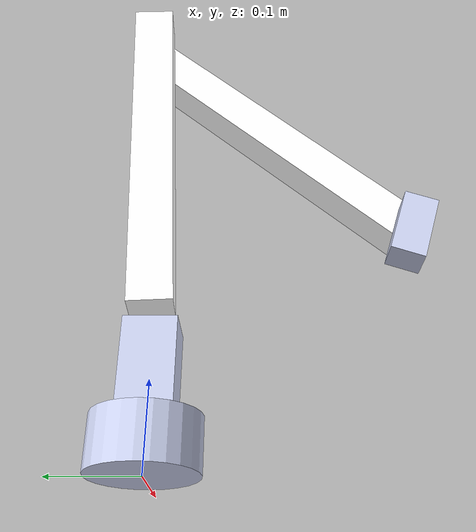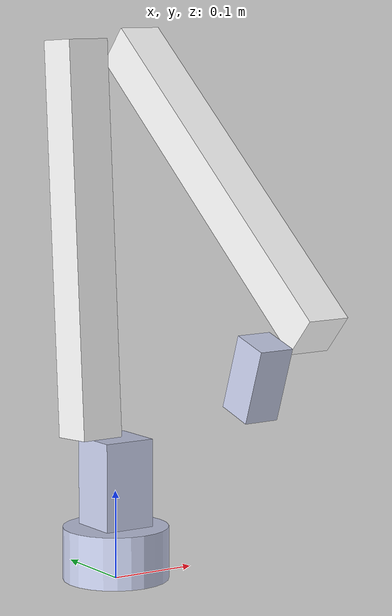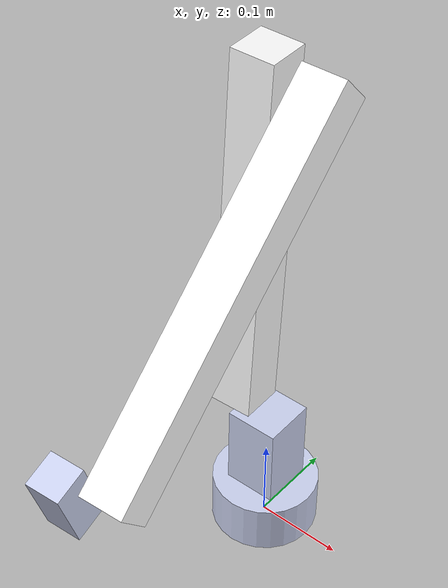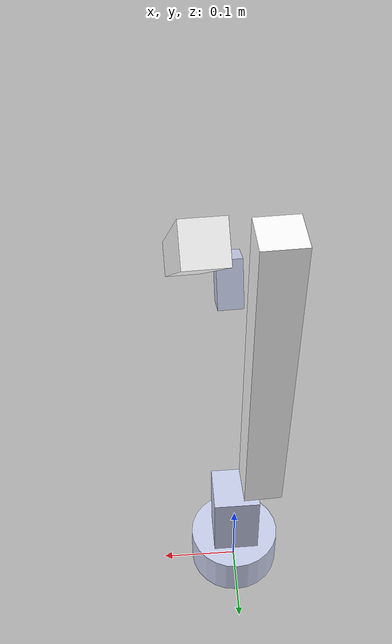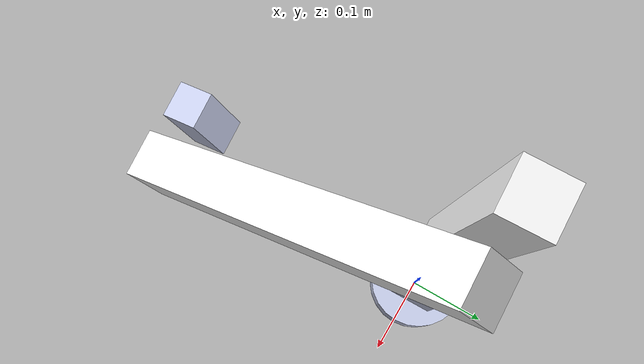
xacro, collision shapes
<?xml version="1.0" encoding="utf-8"?>
<robot xmlns:xacro="http://www.ros.org/wiki/xacro" name="robot_arm">

  <xacro:arg name="mesh_path" default="package://robot_arm/meshes/" />
  <xacro:property name="mesh_path" value="$(arg mesh_path)" />

  <!-- 参数配置 -->
  <xacro:property name="joint_names" value="['joint1', 'joint2', 'joint3', 'joint4']" />
  <xacro:property name="joint_limit_lower" value="-3.14159" />
  <xacro:property name="joint_limit_upper" value="3.14159" />
  <xacro:property name="joint_effort" value="100" />
  <xacro:property name="joint_velocity" value="1.0" />

  <!-- PID控制器参数 -->
  <xacro:property name="p_gain" value="10" />
  <xacro:property name="i_gain" value="0" />
  <xacro:property name="d_gain" value="2" />

  <!-- Base Link -->
  <link name="base_link">
    <inertial>
      <origin xyz="0.00349046211360322 -0.000343265194728414 0.045094182873056" rpy="0 0 0" />
      <mass value="10.00505117450335" />
      <inertia
        ixx="0.00220854266265005" ixy="-2.54728284829126E-05" ixz="-4.35307141610758E-07"
        iyy="0.0019616293162622" iyz="2.14439742958395E-07" izz="0.00405006058283794" />
    </inertial>
    <visual>
      <origin xyz="0 0 0" rpy="0 0 0" />
      <geometry>
        <mesh filename="${mesh_path}base_link.STL" />
      </geometry>
      <material name="">
        <color rgba="0.792156862745098 0.819607843137255 0.933333333333333 1" />
      </material>
    </visual>
    <collision>
      <origin xyz="0 0 0.03" rpy="0 0 0" />
      <geometry>
        <cylinder radius="0.06" length="0.06"/>
      </geometry>
    </collision>
  </link>

  <!-- Link 1 -->
  <link name="Link1">
    <inertial>
      <origin xyz="0.00222691011447779 -0.000103445186121577 -0.0489878006161306" rpy="0 0 0" />
      <mass value="0.730127057991041" />
      <inertia
        ixx="0.000799772837117555" ixy="-1.31346900301297E-06" ixz="3.35950732929857E-05"
        iyy="0.000766589757827449" iyz="-1.41874721294391E-06" izz="0.00129660339371665" />
    </inertial>
    <visual>
      <origin xyz="0 0 0" rpy="0 0 0" />
      <geometry>
        <mesh filename="${mesh_path}Link1.STL" />
      </geometry>
      <material name="">
        <color rgba="0.792156862745098 0.819607843137255 0.933333333333333 1" />
      </material>
    </visual>
    <collision>
      <origin xyz="0 0 -0.05" rpy="0 0 0" />
      <geometry>
        <box size="0.06 0.06 0.1"/>
      </geometry>
    </collision>
  </link>

  <!-- Joint 1 -->
  <joint name="joint1" type="revolute">
    <origin xyz="0 0 0.0612" rpy="-3.1416 0 0.0096884" />
    <parent link="base_link" />
    <child link="Link1" />
    <axis xyz="0 0 1" />
    <limit lower="${joint_limit_lower}" upper="${joint_limit_upper}"
           effort="${joint_effort}" velocity="${joint_velocity}" />
    <dynamics damping="0.5" friction="0.1"/>
  </joint>

  <!-- Link 2 -->
  <link name="Link2">
    <inertial>
      <origin xyz="-1.03700037052453E-05 0.256542749285097 -0.0326276072927307" rpy="0 0 0" />
      <mass value="0.791156109971724" />
      <inertia
        ixx="0.00979567104770538" ixy="1.57083356028265E-08" ixz="4.18417663786553E-08"
        iyy="0.000285533998138127" iyz="-5.37192648050834E-10" izz="0.00983223443892208" />
    </inertial>
    <visual>
      <origin xyz="0 0 0" rpy="0 0 0" />
      <geometry>
        <mesh filename="${mesh_path}Link2.STL" />
      </geometry>
      <material name="">
        <color rgba="1 1 1 1" />
      </material>
    </visual>
    <collision>
      <origin xyz="0 0.22 0" rpy="0 0 0" />
      <geometry>
        <box size="0.05 0.44 0.05"/>
      </geometry>
    </collision>
  </link>

  <!-- Joint 2 -->
  <joint name="joint2" type="revolute">
    <origin xyz="-0.033472 0.001365 -0.1043" rpy="-1.5708 0.056736 1.53" />
    <parent link="Link1" />
    <child link="Link2" />
    <axis xyz="0 0 -1" />
    <limit lower="${joint_limit_lower}" upper="${joint_limit_upper}"
           effort="${joint_effort}" velocity="${joint_velocity}" />
    <dynamics damping="0.7" friction="0.15"/>
  </joint>

  <!-- Link 3 -->
  <link name="Link3">
    <inertial>
      <origin xyz="-4.26112190471395E-06 -0.255430754861549 0.0409457209445715" rpy="0 0 0" />
      <mass value="0.859300672395829" />
      <inertia
        ixx="0.00963783294095957" ixy="1.33464090732295E-07" ixz="-5.38944624605547E-10"
        iyy="0.000326145651166138" iyz="-1.65727535933605E-07" izz="0.00956968209161652" />
    </inertial>
    <visual>
      <origin xyz="0 0 0" rpy="0 0 0" />
      <geometry>
        <mesh filename="${mesh_path}Link3.STL" />
      </geometry>
      <material name="">
        <color rgba="1 1 1 1" />
      </material>
    </visual>
    <collision>
      <origin xyz="0 -0.22 0" rpy="0 0 0" />
      <geometry>
        <box size="0.05 0.44 0.05"/>
      </geometry>
    </collision>
  </link>

  <!-- Joint 3 -->
  <joint name="joint3" type="revolute">
    <origin xyz="0 0.4332 -0.074" rpy="0 0 0.80011" />
    <parent link="Link2" />
    <child link="Link3" />
    <axis xyz="0 0 1" />
    <limit lower="${joint_limit_lower}" upper="${joint_limit_upper}"
           effort="${joint_effort}" velocity="${joint_velocity}" />
    <dynamics damping="0.5" friction="0.1"/>
  </joint>

  <!-- Link 4 -->
  <link name="Link4">
    <inertial>
      <origin xyz="-0.0387015346365765 1.53196899610464E-12 0.0237326102111524" rpy="0 0 0" />
      <mass value="0.10266604078042" />
      <inertia
        ixx="9.32654519509942E-05" ixy="-6.43745039913268E-20" ixz="3.05824287610215E-05"
        iyy="0.000121251354325632" iyz="9.35971406716002E-20" izz="5.50250171861243E-05" />
    </inertial>
    <visual>
      <origin xyz="0 0 0" rpy="0 0 0" />
      <geometry>
        <mesh filename="${mesh_path}Link4.STL" />
      </geometry>
      <material name="">
        <color rgba="0.792156862745098 0.819607843137255 0.933333333333333 1" />
      </material>
    </visual>
    <collision>
      <origin xyz="-0.04 0 0.02" rpy="0 0 0" />
      <geometry>
        <box size="0.08 0.04 0.04"/>
      </geometry>
    </collision>
  </link>

  <!-- Joint 4 -->
  <joint name="joint4" type="revolute">
    <origin xyz="0 -0.44 0.089" rpy="3.1416 0 0.39372" />
    <parent link="Link3" />
    <child link="Link4" />
    <axis xyz="0 0 -1" />
    <limit lower="${joint_limit_lower}" upper="${joint_limit_upper}"
           effort="${joint_effort}" velocity="${joint_velocity}" />
    <dynamics damping="0.3" friction="0.05"/>
  </joint>

<!-- ros2_control 硬件接口定义 -->
<!--true/false    仿真/硬件-->
<ros2_control name="robot_arm_hardware" type="system">
  <hardware>
    <plugin>unitree_hardware/UnitreeHardwareInterface</plugin>
    <param name="use_sim_mode">true</param>
    <param name="usb_pid">64974</param>
  </hardware>

  <!-- Joint 1 GO1仿真 -->
  <joint name="joint1">
    <command_interface name="position"/>
    <state_interface name="position">
      <param name="initial_value">0.0</param>
    </state_interface>
    <state_interface name="velocity"/>
    <state_interface name="effort"/>

    <param name="motor_type">GO1</param>
    <param name="motor_id">1</param>
    <param name="reduction_ratio">6.3</param>
    <param name="zero_offset">0.0</param>
    <param name="kp">3.0</param>
    <param name="kd">0.2</param>
    <param name="is_simulated">true</param>
  </joint>

  <!-- Joint 2 GO1真实电机 -->
  <joint name="joint2">
    <command_interface name="position"/>
    <state_interface name="position">
      <param name="initial_value">0.0</param>
    </state_interface>
    <state_interface name="velocity"/>
    <state_interface name="effort"/>

    <param name="motor_type">GO1</param>
    <param name="motor_id">4</param>
    <param name="reduction_ratio">6.3</param>
    <param name="zero_offset">0.0</param>
    <param name="kp">3</param>
    <param name="kd">0.2</param>
    <param name="is_simulated">true</param>
  </joint>

  <!-- Joint 3 GO1真实电机 -->
  <joint name="joint3">
    <command_interface name="position"/>
    <state_interface name="position">
      <param name="initial_value">0.0</param>
    </state_interface>
    <state_interface name="velocity"/>
    <state_interface name="effort"/>

    <param name="motor_type">GO1</param>
    <param name="motor_id">3</param>
    <param name="reduction_ratio">6.3</param>
    <param name="zero_offset">0.0</param>

    <param name="kp">3</param>
    <param name="kd">0.2</param>
    <param name="is_simulated">true</param>
  </joint>

  <!-- Joint 4 DJI2006仿真 -->
  <joint name="joint4">
    <command_interface name="position"/>
    <state_interface name="position">
      <param name="initial_value">0.0</param>
    </state_interface>
    <state_interface name="velocity"/>
    <state_interface name="effort"/>

    <param name="motor_type">DJI</param>
    <param name="motor_id">4</param>
    <param name="reduction_ratio">36.0</param>
    <param name="zero_offset">0.0</param>
    <param name="kp">0.8</param>
    <param name="kd">0.2</param>
    <param name="is_simulated">true</param>

    <param name ="can_bus">1</param>
    <param name ="can_id">0x203</param>
  </joint>
</ros2_control>

</robot>
